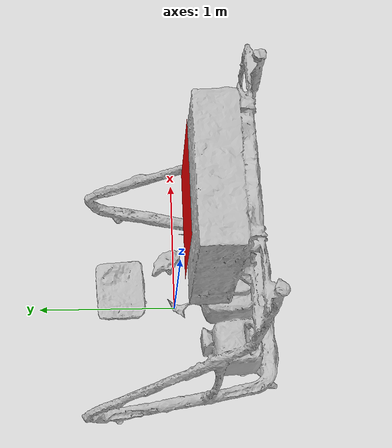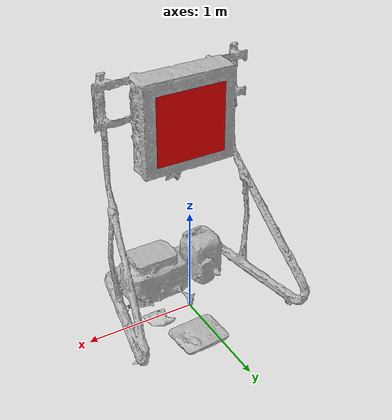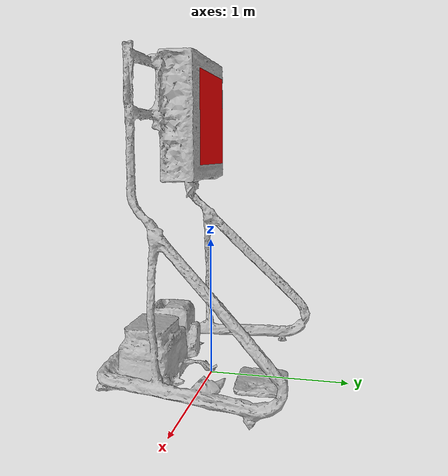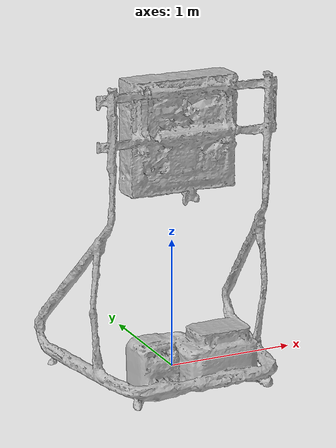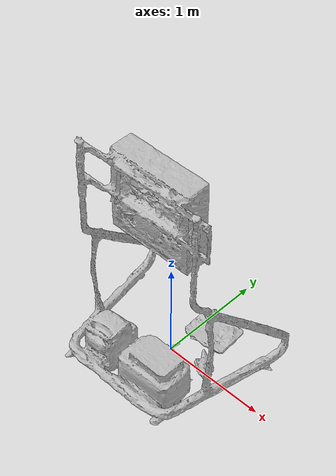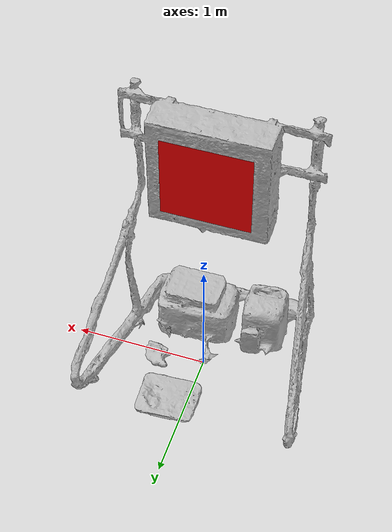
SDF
<?xml version="1.0" ?>
<sdf version="1.5">
  <model name="panel">
    <static>true</static>
      <link name="panel">
        <visual name="visual">
          <geometry>
            <mesh>
              <uri>package://simulator/models/panel/meshes/panel3.dae</uri>
              <scale>0.3 0.3 0.3</scale>
            </mesh>
          </geometry>
        </visual>
        <collision name='collision'>
          <pose>-0.05 0 1.15 1.57 0 0</pose>
          <geometry>
            <box>
              <size>1.65 2.35 1.3</size>
            </box>
          </geometry>
      </collision>
      </link>
      <link name="screen">
        <pose>-0.02 0 0 0 0 3.14</pose>
        <visual name="screen_visual">
          <geometry>
            <mesh>
              <uri>package://simulator/models/panel/meshes/screen.dae</uri>
              <scale>0.3 0.3 0.3</scale>
            </mesh>
          </geometry>
            <material>
                <ambient>1.0 0.0 0.0 1.0</ambient>
                <diffuse>1.0 0.0 0.0 1.0</diffuse>
                <specular>1.0 1.0 1.0 1.0</specular>
                <emissive>1.0 0.0 0.0 1.0</emissive>
            </material>
        </visual>
      </link>
      <plugin
        filename="ColorControl"
        name="ignition::gazebo::ColorControl">
        <control_name>screen_visual</control_name>
        <service_name>/panel/toggle_signal</service_name>
      </plugin>
  </model>
</sdf>
